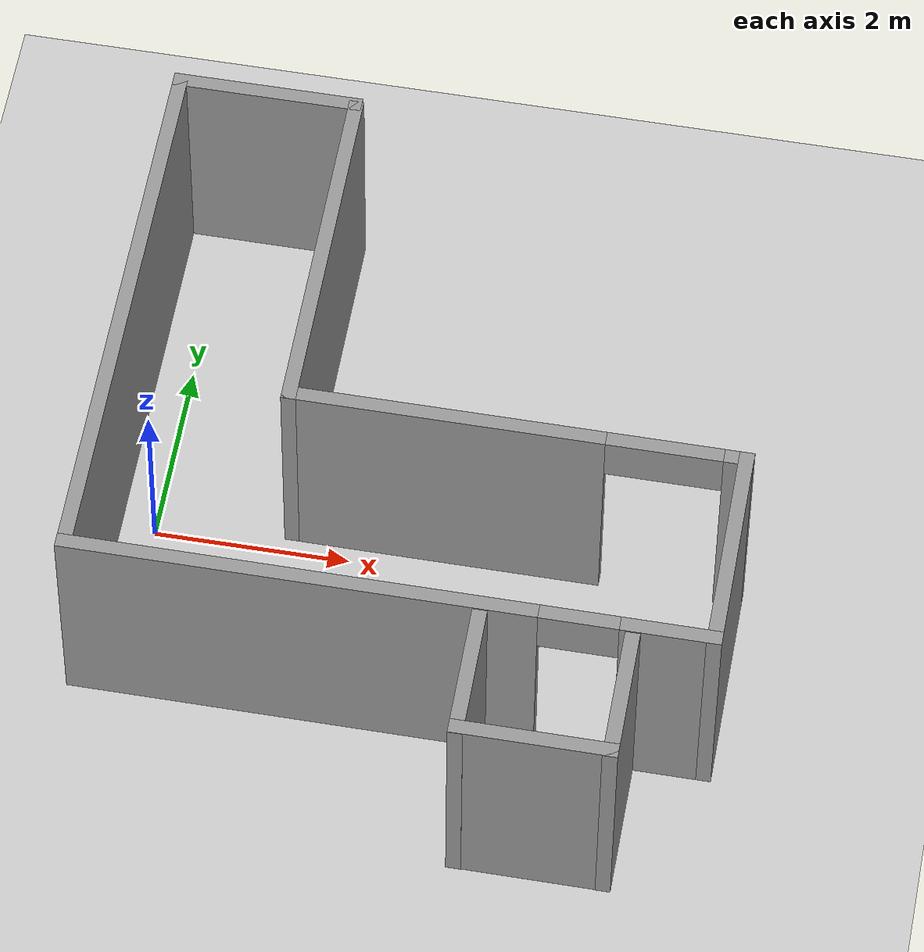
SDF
<?xml version="1.0" ?>
<sdf version="1.4">
  <world name="default">
    <include>
      <uri>model://ground_plane</uri>
    </include>
    <include>
      <uri>model://sun</uri>
    </include>
    <include>
      <uri>model://singtel_floorplan/singtel_floor1</uri>
      <name>singtel_floor1</name>
    </include>
  </world>
</sdf>

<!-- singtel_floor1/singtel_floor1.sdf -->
<sdf version='1.6'>
  <model name='singtel_floor1'>
    <pose frame=''>2.73773 0.297575 0 0 -0 0</pose>
    <link name='Wall_0'>
      <collision name='Wall_0_Collision'>
        <geometry>
          <box>
            <size>5.75 0.15 2.5</size>
          </box>
        </geometry>
        <pose frame=''>0 0 1.25 0 -0 0</pose>
      </collision>
      <visual name='Wall_0_Visual'>
        <pose frame=''>0 0 1.25 0 -0 0</pose>
        <geometry>
          <box>
            <size>5.75 0.15 2.5</size>
          </box>
        </geometry>
        <material>
          <script>
            <uri>file://media/materials/scripts/gazebo.material</uri>
            <name>Gazebo/Grey</name>
          </script>
          <ambient>1 1 1 1</ambient>
        </material>
        <meta>
          <layer>0</layer>
        </meta>
      </visual>
      <pose frame=''>-3.173 0.726275 0 0 -0 -1.5708</pose>
    </link>
    <link name='Wall_14'>
      <collision name='Wall_14_Collision'>
        <geometry>
          <box>
            <size>1.41 0.15 2.5</size>
          </box>
        </geometry>
        <pose frame=''>0 0 1.25 0 -0 0</pose>
      </collision>
      <visual name='Wall_14_Visual'>
        <pose frame=''>0 0 1.25 0 -0 0</pose>
        <geometry>
          <box>
            <size>1.41 0.15 2.5</size>
          </box>
        </geometry>
        <material>
          <script>
            <uri>file://media/materials/scripts/gazebo.material</uri>
            <name>Gazebo/Grey</name>
          </script>
          <ambient>1 1 1 1</ambient>
        </material>
        <meta>
          <layer>0</layer>
        </meta>
      </visual>
      <pose frame=''>0.913525 -2.94917 0 0 -0 -1.5708</pose>
    </link>
    <link name='Wall_16'>
      <collision name='Wall_16_Collision'>
        <geometry>
          <box>
            <size>1.41 0.15 2.5</size>
          </box>
        </geometry>
        <pose frame=''>0 0 1.25 0 -0 0</pose>
      </collision>
      <visual name='Wall_16_Visual'>
        <pose frame=''>0 0 1.25 0 -0 0</pose>
        <geometry>
          <box>
            <size>1.41 0.15 2.5</size>
          </box>
        </geometry>
        <material>
          <script>
            <uri>file://media/materials/scripts/gazebo.material</uri>
            <name>Gazebo/Grey</name>
          </script>
          <ambient>1 1 1 1</ambient>
        </material>
        <meta>
          <layer>0</layer>
        </meta>
      </visual>
      <pose frame=''>2.39473 -2.94917 0 0 -0 -1.5708</pose>
    </link>
    <link name='Wall_18'>
      <collision name='Wall_18_Collision'>
        <geometry>
          <box>
            <size>1.63 0.15 2.5</size>
          </box>
        </geometry>
        <pose frame=''>0 0 1.25 0 -0 0</pose>
      </collision>
      <visual name='Wall_18_Visual'>
        <pose frame=''>0 0 1.25 0 -0 0</pose>
        <geometry>
          <box>
            <size>1.63 0.15 2.5</size>
          </box>
        </geometry>
        <material>
          <script>
            <uri>file://media/materials/scripts/gazebo.material</uri>
            <name>Gazebo/Grey</name>
          </script>
          <ambient>1 1 1 1</ambient>
        </material>
        <meta>
          <layer>0</layer>
        </meta>
      </visual>
      <pose frame=''>1.65352 -3.57555 0 0 -0 0</pose>
    </link>
    <link name='Wall_2'>
      <pose frame=''>-0 -2.16047 0 0 -0 3.14159</pose>
      <visual name='Wall_2_Visual_0'>
        <pose frame=''>-2.75536 0 1.25 0 -0 0</pose>
        <geometry>
          <box>
            <size>0.989275 0.15 2.5</size>
          </box>
        </geometry>
        <material>
          <script>
            <uri>file://media/materials/scripts/gazebo.material</uri>
            <name>Gazebo/Grey</name>
          </script>
          <ambient>1 1 1 1</ambient>
        </material>
        <meta>
          <layer>0</layer>
        </meta>
      </visual>
      <collision name='Wall_2_Collision_0'>
        <geometry>
          <box>
            <size>0.989275 0.15 2.5</size>
          </box>
        </geometry>
        <pose frame=''>-2.75536 0 1.25 0 -0 0</pose>
      </collision>
      <visual name='Wall_2_Visual_1'>
        <pose frame=''>0.889638 0 1.25 0 -0 0</pose>
        <geometry>
          <box>
            <size>4.72072 0.15 2.5</size>
          </box>
        </geometry>
        <material>
          <script>
            <uri>file://media/materials/scripts/gazebo.material</uri>
            <name>Gazebo/Grey</name>
          </script>
          <ambient>1 1 1 1</ambient>
        </material>
        <meta>
          <layer>0</layer>
        </meta>
      </visual>
      <collision name='Wall_2_Collision_1'>
        <geometry>
          <box>
            <size>4.72072 0.15 2.5</size>
          </box>
        </geometry>
        <pose frame=''>0.889638 0 1.25 0 -0 0</pose>
      </collision>
      <visual name='Wall_2_Visual_2'>
        <pose frame=''>-1.86573 0 2.25 0 -0 0</pose>
        <geometry>
          <box>
            <size>0.79 0.15 0.5</size>
          </box>
        </geometry>
        <material>
          <script>
            <uri>file://media/materials/scripts/gazebo.material</uri>
            <name>Gazebo/Grey</name>
          </script>
          <ambient>1 1 1 1</ambient>
        </material>
        <meta>
          <layer>0</layer>
        </meta>
      </visual>
      <collision name='Wall_2_Collision_2'>
        <geometry>
          <box>
            <size>0.79 0.15 0.5</size>
          </box>
        </geometry>
        <pose frame=''>-1.86573 0 2.25 0 -0 0</pose>
      </collision>
    </link>
    <link name='Wall_4'>
      <collision name='Wall_4_Collision'>
        <geometry>
          <box>
            <size>2.25 0.15 2.5</size>
          </box>
        </geometry>
        <pose frame=''>0 0 1.25 0 -0 0</pose>
      </collision>
      <visual name='Wall_4_Visual'>
        <pose frame=''>0 0 1.25 0 -0 0</pose>
        <geometry>
          <box>
            <size>2.25 0.15 2.5</size>
          </box>
        </geometry>
        <material>
          <script>
            <uri>file://media/materials/scripts/gazebo.material</uri>
            <name>Gazebo/Grey</name>
          </script>
          <ambient>1 1 1 1</ambient>
        </material>
        <meta>
          <layer>0</layer>
        </meta>
      </visual>
      <pose frame=''>3.175 -1.11048 0 0 -0 1.5708</pose>
    </link>
    <link name='Wall_5'>
      <pose frame=''>0.91 -0.060475 0 0 -0 3.14159</pose>
      <visual name='Wall_5_Visual_0'>
        <pose frame=''>-2.19357 0 1.25 0 -0 0</pose>
        <geometry>
          <box>
            <size>0.292862 0.15 2.5</size>
          </box>
        </geometry>
        <material>
          <script>
            <uri>file://media/materials/scripts/gazebo.material</uri>
            <name>Gazebo/Grey</name>
          </script>
          <ambient>1 1 1 1</ambient>
        </material>
        <meta>
          <layer>0</layer>
        </meta>
      </visual>
      <collision name='Wall_5_Collision_0'>
        <geometry>
          <box>
            <size>0.292862 0.15 2.5</size>
          </box>
        </geometry>
        <pose frame=''>-2.19357 0 1.25 0 -0 0</pose>
      </collision>
      <visual name='Wall_5_Visual_1'>
        <pose frame=''>0.728681 0 1.25 0 -0 0</pose>
        <geometry>
          <box>
            <size>3.22264 0.15 2.5</size>
          </box>
        </geometry>
        <material>
          <script>
            <uri>file://media/materials/scripts/gazebo.material</uri>
            <name>Gazebo/Grey</name>
          </script>
          <ambient>1 1 1 1</ambient>
        </material>
        <meta>
          <layer>0</layer>
        </meta>
      </visual>
      <collision name='Wall_5_Collision_1'>
        <geometry>
          <box>
            <size>3.22264 0.15 2.5</size>
          </box>
        </geometry>
        <pose frame=''>0.728681 0 1.25 0 -0 0</pose>
      </collision>
      <visual name='Wall_5_Visual_2'>
        <pose frame=''>-1.46489 0 2.25 0 -0 0</pose>
        <geometry>
          <box>
            <size>1.1645 0.15 0.5</size>
          </box>
        </geometry>
        <material>
          <script>
            <uri>file://media/materials/scripts/gazebo.material</uri>
            <name>Gazebo/Grey</name>
          </script>
          <ambient>1 1 1 1</ambient>
        </material>
        <meta>
          <layer>0</layer>
        </meta>
      </visual>
      <collision name='Wall_5_Collision_2'>
        <geometry>
          <box>
            <size>1.1645 0.15 0.5</size>
          </box>
        </geometry>
        <pose frame=''>-1.46489 0 2.25 0 -0 0</pose>
      </collision>
    </link>
    <link name='Wall_7'>
      <collision name='Wall_7_Collision'>
        <geometry>
          <box>
            <size>3.75 0.15 2.5</size>
          </box>
        </geometry>
        <pose frame=''>0 0 1.25 0 -0 0</pose>
      </collision>
      <visual name='Wall_7_Visual'>
        <pose frame=''>0 0 1.25 0 -0 0</pose>
        <geometry>
          <box>
            <size>3.75 0.15 2.5</size>
          </box>
        </geometry>
        <material>
          <script>
            <uri>file://media/materials/scripts/gazebo.material</uri>
            <name>Gazebo/Grey</name>
          </script>
          <ambient>1 1 1 1</ambient>
        </material>
        <meta>
          <layer>0</layer>
        </meta>
      </visual>
      <pose frame=''>-1.355 1.73952 0 0 -0 1.5708</pose>
    </link>
    <link name='Wall_9'>
      <collision name='Wall_9_Collision'>
        <geometry>
          <box>
            <size>1.95 0.15 2.5</size>
          </box>
        </geometry>
        <pose frame=''>0 0 1.25 0 -0 0</pose>
      </collision>
      <visual name='Wall_9_Visual'>
        <pose frame=''>0 0 1.25 0 -0 0</pose>
        <geometry>
          <box>
            <size>1.95 0.15 2.5</size>
          </box>
        </geometry>
        <material>
          <script>
            <uri>file://media/materials/scripts/gazebo.material</uri>
            <name>Gazebo/Grey</name>
          </script>
          <ambient>1 1 1 1</ambient>
        </material>
        <meta>
          <layer>0</layer>
        </meta>
      </visual>
      <pose frame=''>-2.273 3.57918 0 0 -0 0</pose>
    </link>
    <static>1</static>
  </model>
</sdf>
